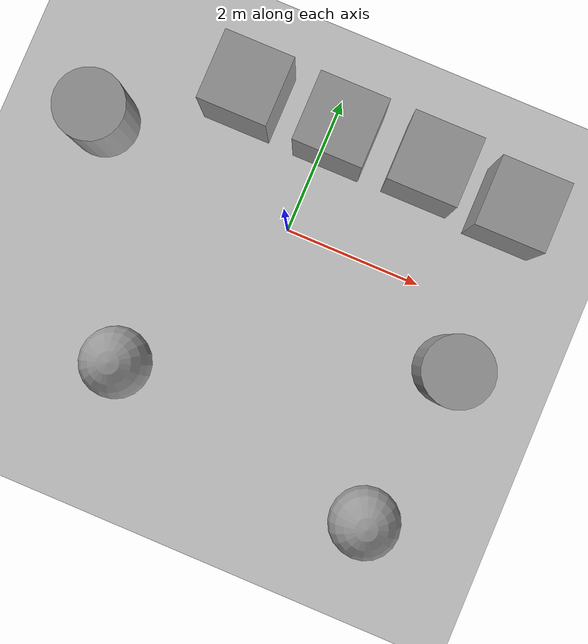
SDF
<sdf version="1.7">
 <world name="default">
  <light name="sun" type="directional">
   <pose>0 0 10 0 -0 0</pose>
   <diffuse>0.8 0.8 0.8 1</diffuse>
   <specular>0.2 0.2 0.2 1</specular>
   <attenuation>
    <range>1000</range>
    <constant>0.9</constant>
    <linear>0.01</linear>
    <quadratic>0.001</quadratic>
   </attenuation>
   <direction>-0.5 0.1 -0.9</direction>
   <spot><inner_angle>0</inner_angle><outer_angle>0</outer_angle><falloff>0</falloff></spot>
  </light>
  <model name="ground_plane">
   <static>1</static>
   <link name="link">
    <collision name="collision">
     <geometry><plane><normal>0 0 1</normal><size>100 100</size></plane></geometry>
     <surface>
      <contact><collide_bitmask>65535</collide_bitmask></contact>
      <friction><ode><mu>100</mu><mu2>50</mu2></ode></friction>
     </surface>
    </collision>
    <visual name="visual">
     <cast_shadows>0</cast_shadows>
     <geometry><plane><normal>0 0 1</normal><size>100 100</size></plane></geometry>
     <material>
      <script><uri>file://media/materials/scripts/gazebo.material</uri><name>Gazebo/Grey</name></script>
     </material>
    </visual>
   </link>
  </model>
  <gravity>0 0 -9.8</gravity>
  <magnetic_field>6e-06 2.3e-05 -4.2e-05</magnetic_field>
  <atmosphere type="adiabatic"/>
  <physics type="ode">
   <max_step_size>0.001</max_step_size>
   <real_time_factor>1</real_time_factor>
   <real_time_update_rate>1000</real_time_update_rate>
  </physics>
  <scene><ambient>0.4 0.4 0.4 1</ambient><background>0.7 0.7 0.7 1</background><shadows>1</shadows></scene>
  <audio><device>default</device></audio>
  <spherical_coordinates>
   <surface_model>EARTH_WGS84</surface_model>
   <latitude_deg>0</latitude_deg>
   <longitude_deg>0</longitude_deg>
   <elevation>0</elevation>
   <heading_deg>0</heading_deg>
  </spherical_coordinates>
  <model name="unit_sphere">
   <pose>2.52663 -3.29426 0.5 0 -0 0</pose>
   <link name="link">
    <inertial>
     <mass>1</mass>
     <inertia><ixx>0.1</ixx><ixy>0</ixy><ixz>0</ixz><iyy>0.1</iyy><iyz>0</iyz><izz>0.1</izz></inertia>
    </inertial>
    <collision name="collision"><geometry><sphere><radius>0.5</radius></sphere></geometry></collision>
    <visual name="visual">
     <geometry><sphere><radius>0.5</radius></sphere></geometry>
     <material>
      <script><name>Gazebo/Grey</name><uri>file://media/materials/scripts/gazebo.material</uri></script>
     </material>
    </visual>
   </link>
  </model>
  <model name="unit_cylinder">
   <pose>2.84631 -0.946377 0.499998 3e-06 -4e-06 0</pose>
   <link name="link">
    <inertial>
     <mass>1</mass>
     <inertia><ixx>0.145833</ixx><ixy>0</ixy><ixz>0</ixz><iyy>0.145833</iyy><iyz>0</iyz><izz>0.125</izz></inertia>
    </inertial>
    <collision name="collision">
     <geometry><cylinder><radius>0.5</radius><length>1</length></cylinder></geometry>
    </collision>
    <visual name="visual">
     <geometry><cylinder><radius>0.5</radius><length>1</length></cylinder></geometry>
     <material>
      <script><name>Gazebo/Grey</name><uri>file://media/materials/scripts/gazebo.material</uri></script>
     </material>
    </visual>
   </link>
  </model>
  <model name="unit_sphere_0">
   <pose>-1.41602 -2.6175 0.5 0 -0 0</pose>
   <link name="link">
    <inertial>
     <mass>1</mass>
     <inertia><ixx>0.1</ixx><ixy>0</ixy><ixz>0</ixz><iyy>0.1</iyy><iyz>0</iyz><izz>0.1</izz></inertia>
    </inertial>
    <collision name="collision"><geometry><sphere><radius>0.5</radius></sphere></geometry></collision>
    <visual name="visual">
     <geometry><sphere><radius>0.5</radius></sphere></geometry>
     <material>
      <script><name>Gazebo/Grey</name><uri>file://media/materials/scripts/gazebo.material</uri></script>
     </material>
    </visual>
   </link>
  </model>
  <model name="unit_cylinder_0">
   <pose>-3.00129 0.416167 0.499998 3e-06 4e-06 -0</pose>
   <link name="link">
    <inertial>
     <mass>1</mass>
     <inertia><ixx>0.145833</ixx><ixy>0</ixy><ixz>0</ixz><iyy>0.145833</iyy><iyz>0</iyz><izz>0.125</izz></inertia>
    </inertial>
    <collision name="collision">
     <geometry><cylinder><radius>0.5</radius><length>1</length></cylinder></geometry>
    </collision>
    <visual name="visual">
     <geometry><cylinder><radius>0.5</radius><length>1</length></cylinder></geometry>
     <material>
      <script><name>Gazebo/Grey</name><uri>file://media/materials/scripts/gazebo.material</uri></script>
     </material>
    </visual>
   </link>
  </model>
  <model name="unit_box">
   <pose>-1.23395 1.54781 0.499995 0 1e-05 0</pose>
   <link name="link">
    <inertial>
     <mass>1</mass>
     <inertia>
      <ixx>0.166667</ixx>
      <ixy>0</ixy>
      <ixz>0</ixz>
      <iyy>0.166667</iyy>
      <iyz>0</iyz>
      <izz>0.166667</izz>
     </inertia>
    </inertial>
    <collision name="collision"><geometry><box><size>1 1 1</size></box></geometry></collision>
    <visual name="visual">
     <geometry><box><size>1 1 1</size></box></geometry>
     <material>
      <script><name>Gazebo/Grey</name><uri>file://media/materials/scripts/gazebo.material</uri></script>
     </material>
    </visual>
   </link>
  </model>
  <model name="unit_box_0">
   <pose>0.147639 1.52588 0.499995 1e-05 -0 0</pose>
   <link name="link">
    <inertial>
     <mass>1</mass>
     <inertia>
      <ixx>0.166667</ixx>
      <ixy>0</ixy>
      <ixz>0</ixz>
      <iyy>0.166667</iyy>
      <iyz>0</iyz>
      <izz>0.166667</izz>
     </inertia>
    </inertial>
    <collision name="collision"><geometry><box><size>1 1 1</size></box></geometry></collision>
    <visual name="visual">
     <geometry><box><size>1 1 1</size></box></geometry>
     <material>
      <script><name>Gazebo/Grey</name><uri>file://media/materials/scripts/gazebo.material</uri></script>
     </material>
    </visual>
   </link>
  </model>
  <model name="unit_box_1">
   <pose>1.50187 1.52964 0.499995 0 1e-05 0</pose>
   <link name="link">
    <inertial>
     <mass>1</mass>
     <inertia>
      <ixx>0.166667</ixx>
      <ixy>0</ixy>
      <ixz>0</ixz>
      <iyy>0.166667</iyy>
      <iyz>0</iyz>
      <izz>0.166667</izz>
     </inertia>
    </inertial>
    <collision name="collision"><geometry><box><size>1 1 1</size></box></geometry></collision>
    <visual name="visual">
     <geometry><box><size>1 1 1</size></box></geometry>
     <material>
      <script><name>Gazebo/Grey</name><uri>file://media/materials/scripts/gazebo.material</uri></script>
     </material>
    </visual>
   </link>
  </model>
  <model name="unit_box_2">
   <pose>2.79556 1.42064 0.499995 -1e-05 -0 -0</pose>
   <link name="link">
    <inertial>
     <mass>1</mass>
     <inertia>
      <ixx>0.166667</ixx>
      <ixy>0</ixy>
      <ixz>0</ixz>
      <iyy>0.166667</iyy>
      <iyz>0</iyz>
      <izz>0.166667</izz>
     </inertia>
    </inertial>
    <collision name="collision"><geometry><box><size>1 1 1</size></box></geometry></collision>
    <visual name="visual">
     <geometry><box><size>1 1 1</size></box></geometry>
     <material>
      <script><name>Gazebo/Grey</name><uri>file://media/materials/scripts/gazebo.material</uri></script>
     </material>
    </visual>
   </link>
  </model>
 </world>
</sdf>
